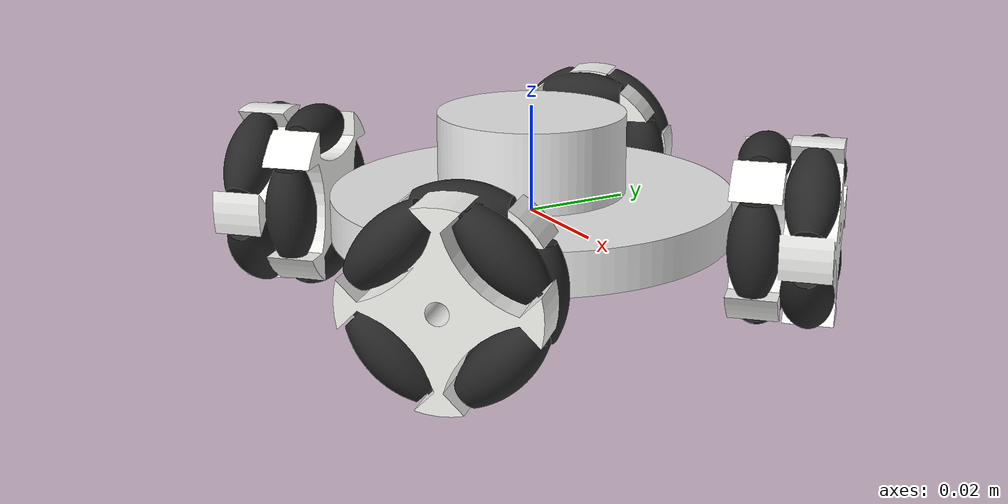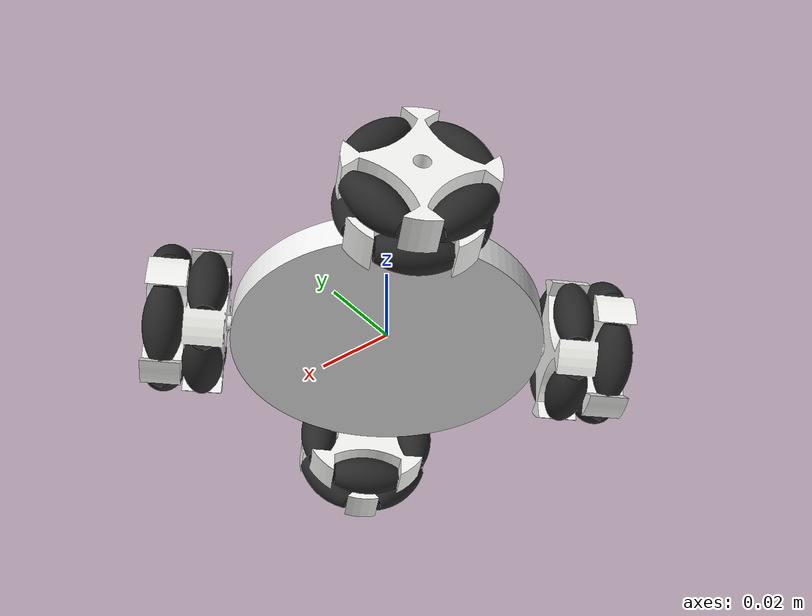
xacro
<?xml version="1.0"?>
<robot name="omni_robot" xmlns:xacro="http://ros.org/wiki/xacro">

  <xacro:property name="M_PI" value="3.14159274" />

  <xacro:arg name="use_ros2_control" default="true" />
  <xacro:arg name="sim_mode" default="false" />

  <xacro:include filename="$(find armmy_omnibot)/urdf/base/base.urdf.xacro" />
  <xacro:include filename="$(find armmy_omnibot)/urdf/omni_wheel/gz_omni_wheel.urdf.xacro" />
  <xacro:include filename="$(find armmy_omnibot)/urdf/lidar/lidar_gz.urdf.xacro" />
  <xacro:include filename="$(find armmy_omnibot)/urdf/imu/imu_gz.urdf.xacro" />
  <xacro:include filename="$(find armmy_omnibot)/urdf/color.xacro" />

  <!-- =============== Link & Joint =============== -->
  <!-- Base -->
  <link name="base_footprint" />
  <xacro:base_v0 parent="base_footprint">
    <origin xyz="0 0 0" rpy="0 0 ${M_PI / 4}" />
  </xacro:base_v0>

  <!-- Wheel -->
  <!-- 1st wheel -->
  <xacro:wheel_v0 prefix="first" parent="base_link">
    <origin xyz="-0.0 0.038375 -0.0" rpy="0 0 0" />
    <axis xyz="0.0 1.0 0.0" />
  </xacro:wheel_v0>

  <!-- 2nd wheel -->
  <xacro:wheel_v0 prefix="second" parent="base_link">
    <origin xyz="-0.038375 0.0 -0.0" rpy="0 0 ${M_PI/2}" />
    <axis xyz="0.0 1.0 0.0" />
  </xacro:wheel_v0>

  <!-- 3rd wheel -->
  <xacro:wheel_v0 prefix="third" parent="base_link">
    <origin xyz="-0.0 -0.038375 -0.0" rpy="0 0 ${M_PI}" />
    <axis xyz="0.0 1.0 0.0" />
  </xacro:wheel_v0>

  <!-- 4th wheel -->
  <xacro:wheel_v0 prefix="fourth" parent="base_link">
    <origin xyz="0.038375 0.0 -0.0" rpy="0 0 ${3*M_PI/2}" />
    <axis xyz="0.0 1.0 0.0" />
  </xacro:wheel_v0>

  <!-- lidar sensor -->
  <xacro:lidar_v0 prefix="top" parent="base_link">
    <origin xyz="0 0 0.05000000000000001" />
  </xacro:lidar_v0>
  <xacro:lidar_gazebo_v0 prefix="top" min_rad="-3.14" max_rad="3.14" min_range="0.02" max_range="10" />

  <!-- imu sensor -->
  <xacro:imu_v0 prefix="top" parent="base_link">
    <origin xyz="0 0 0.05000000000000001" />
  </xacro:imu_v0>
  <xacro:imu_gazebo_v0 prefix="top" />

  <!-- ===============  Transmission =============== -->
  <xacro:wheel_trans_v0 prefix="first" />
  <xacro:wheel_trans_v0 prefix="second" />
  <xacro:wheel_trans_v0 prefix="third" />
  <xacro:wheel_trans_v0 prefix="fourth" />

  <!-- Base -->
  <xacro:base_gazebo_v0 />

  <!-- Wheel -->
  <xacro:wheel_gazebo_v0 prefix="first" />
  <xacro:wheel_gazebo_v0 prefix="second" />
  <xacro:wheel_gazebo_v0 prefix="third" />
  <xacro:wheel_gazebo_v0 prefix="fourth" />

  <ros2_control name="GazeboSystem" type="system">
    <hardware>
      <plugin>gz_ros2_control/GazeboSimSystem</plugin>
    </hardware>
    <joint name="first_wheel_joint">
      <command_interface name="velocity">
        <param name="min">-3.14</param>
        <param name="max">3.14</param>
      </command_interface>
      <state_interface name="velocity" />
      <state_interface name="position" />
    </joint>

    <joint name="second_wheel_joint">
      <command_interface name="velocity">
        <param name="min">-3.14</param>
        <param name="max">3.14</param>
      </command_interface>
      <state_interface name="velocity" />
      <state_interface name="position" />
    </joint>

    <joint name="third_wheel_joint">
      <command_interface name="velocity">
        <param name="min">-3.14</param>
        <param name="max">3.14</param>
      </command_interface>
      <state_interface name="velocity" />
      <state_interface name="position" />
    </joint>

    <joint name="fourth_wheel_joint">
      <command_interface name="velocity">
        <param name="min">-3.14</param>
        <param name="max">3.14</param>
      </command_interface>
      <state_interface name="velocity" />
      <state_interface name="position" />
    </joint>
  </ros2_control>

  <gazebo>
    <plugin name="gz_ros2_control::GazeboSimROS2ControlPlugin"
      filename="libgz_ros2_control-system.so">
      <parameters>$(find armmy_omnibot)/config/ros2_controller/my_controllers.yaml</parameters>
    </plugin>
    <plugin filename="libignition-gazebo6-pose-publisher-system.so"
      name="ignition::gazebo::systems::PosePublisher">
      <publish_link_pose>false</publish_link_pose>
      <publish_nested_model_pose>true</publish_nested_model_pose>
      <static_update_frequency>10</static_update_frequency>
   </plugin>
  </gazebo>
</robot>

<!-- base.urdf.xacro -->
<robot xmlns:xacro="http://ros.org/wiki/xacro">

  <xacro:include filename="$(find armmy_omnibot)/urdf/base/base.gazebo.xacro" />
  <xacro:include filename="$(find armmy_omnibot)/urdf/inertial_macros.xacro" />

  <xacro:property name="bass_thickness" value="0.008" />
  <xacro:property name="base_radian" value="0.040" />
  <xacro:property name="base_mass" value="0.2" />

  <xacro:macro name="base_v0" params="parent *joint_origin">
    <joint name="base_link_joint" type="fixed">
      <xacro:insert_block name="joint_origin" />
      <parent link="${parent}" />
      <child link="base_link" />
    </joint>

    <link name="base_link">
      <visual>
        <geometry>
          <mesh filename="package://armmy_omnibot/meshes/base_link.stl"
            scale="0.001 0.001 0.001" />
        </geometry>
        <material name="white" />
      </visual>
      <collision>
        <geometry>
          <mesh filename="package://armmy_omnibot/meshes/base_link.stl"
            scale="0.001 0.001 0.001" />
        </geometry>
      </collision>

      <xacro:inertial_cylinder mass="${base_mass}" length="${bass_thickness}"
        radius="${base_radian}">
        <origin xyz="0 0 0" rpy="0 0 0" />
      </xacro:inertial_cylinder>

    </link>
  </xacro:macro>

</robot>

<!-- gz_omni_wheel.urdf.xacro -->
<robot xmlns:xacro="http://ros.org/wiki/xacro">
    <xacro:include filename="$(find armmy_omnibot)/urdf/inertial_macros.xacro" />
    <xacro:include filename="$(find armmy_omnibot)/urdf/omni_wheel/omni_wheel.gazebo.xacro" />
    <xacro:include filename="$(find armmy_omnibot)/urdf/omni_wheel/omni_wheel.transmission.xacro" />
    <xacro:include filename="$(find armmy_omnibot)/urdf/roller/gz_roller.urdf.xacro" />

    <xacro:property name="wheel_thickness" value="0.0185" />
    <xacro:property name="wheel_radian" value="0.0175" />
    <xacro:property name="wheel_mass" value="0.05" />

    <xacro:macro name="wheel_v0" params="prefix parent *joint_origin *joint_axis">
        <joint name="${prefix}_wheel_joint" type="continuous">
            <xacro:insert_block name="joint_origin" />
            <parent link="${parent}" />
            <child link="${prefix}_wheel_link" />
            <limit effort="100" velocity="100" />
            <xacro:insert_block name="joint_axis" />
        </joint>

        <link name="${prefix}_wheel_link">
            <visual>
                <geometry>
                    <mesh filename="package://armmy_omnibot/meshes/omni_wheel/wheel_assembly.dae"
                        scale="1 1 1" />
                </geometry>
            </visual>

            <xacro:inertial_cylinder mass="${wheel_mass}" length="${wheel_thickness}"
                radius="${wheel_radian}">
                <origin xyz="0 ${wheel_thickness/2} 0" rpy="1.570796327 0 0" />
            </xacro:inertial_cylinder>
        </link>

        <xacro:roller prefix="${prefix}" num="1">
            <origin xyz="0.0055 0.0046 0.0" rpy="0.0 0.0 0.0" />
            <axis xyz="0.0 0.0 1.0" />
        </xacro:roller>
        <xacro:roller prefix="${prefix}" num="2">
            <origin xyz="0.0 0.0046 0.0055" rpy="0.0 0.0 0.0" />
            <axis xyz="-1.0 0.0 0.0" />
        </xacro:roller>
        <xacro:roller prefix="${prefix}" num="3">
            <origin xyz="-0.0055 0.0046 0.0" rpy="0.0 0.0 0.0" />
            <axis xyz="-0.0 0.0 -1.0" />
        </xacro:roller>
        <xacro:roller prefix="${prefix}" num="4">
            <origin xyz="-0.0 0.0046 -0.0055" rpy="0.0 0.0 0.0" />
            <axis xyz="1.0 0.0 -0.0" />
        </xacro:roller>
        <xacro:roller prefix="${prefix}" num="5">
            <origin xyz="0.0039 0.0139 0.0039" rpy="0.0 0.0 0.0" />
            <axis xyz="-0.707107 0.0 0.707107" />
        </xacro:roller>
        <xacro:roller prefix="${prefix}" num="6">
            <origin xyz="-0.0039 0.0139 0.0039" rpy="0.0 0.0 0.0" />
            <axis xyz="-0.707107 0.0 -0.707107" />
        </xacro:roller>
        <xacro:roller prefix="${prefix}" num="7">
            <origin xyz="-0.0039 0.0139 -0.0039" rpy="0.0 0.0 0.0" />
            <axis xyz="0.707107 0.0 -0.707107" />
        </xacro:roller>
        <xacro:roller prefix="${prefix}" num="8">
            <origin xyz="0.0039 0.0139 -0.0039" rpy="0.0 0.0 0.0" />
            <axis xyz="0.707107 0.0 0.707107" />
        </xacro:roller>
    </xacro:macro>
</robot>

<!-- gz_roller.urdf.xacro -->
<robot xmlns:xacro="http://ros.org/wiki/xacro">
    <xacro:include filename="$(find armmy_omnibot)/urdf/inertial_macros.xacro" />
    <xacro:property name="roller_mass" value="0.02" />
    <xacro:property name="roller_radius" value="0.012" />
    <xacro:macro name="roller" params="prefix num *joint_origin *joint_axis">

        <link name="roller_${prefix}_${num}_link">
            <xacro:inertial_sphere mass="${roller_mass}" radius="${roller_radius}">
                <origin xyz="0 0 0" rpy="0 0 0" />
            </xacro:inertial_sphere>
            <collision>
                <origin xyz="0 0 0" rpy="0 0 0" />
                <geometry>
                    <sphere radius="${roller_radius}" />
                </geometry>
            </collision>
            <surface>
                <friction>
                    <ode>
                        <mu>1.0</mu>
                        <mu2>1.0</mu2>
                    </ode>
                </friction>
            </surface>
        </link>
        <joint name="roller_${prefix}_${num}_joint" type="continuous">
            <xacro:insert_block name="joint_origin" />
            <parent link="${prefix}_wheel_link" />
            <child link="roller_${prefix}_${num}_link" />
            <xacro:insert_block name="joint_axis" />
        </joint>
    </xacro:macro>
</robot>

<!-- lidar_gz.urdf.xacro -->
<robot xmlns:xacro="http://ros.org/wiki/xacro">
  <xacro:include filename="$(find armmy_omnibot)/urdf/lidar/lidar.gz.xacro" />

  <xacro:macro name="lidar_v0" params="prefix parent *joint_origin">
    <joint name="${prefix}_lidar_joint" type="fixed">
      <xacro:insert_block name="joint_origin" />
      <parent link="${parent}" />
      <child link="${prefix}_lidar_link" />
    </joint>
    <link name="${prefix}_lidar_link">
    </link>
  </xacro:macro>
</robot>

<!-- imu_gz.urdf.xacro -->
<robot xmlns:xacro="http://ros.org/wiki/xacro">
  <xacro:include filename="$(find armmy_omnibot)/urdf/imu/imu.gz.xacro" />
  <xacro:macro name="imu_v0" params="prefix parent *joint_origin">
    <joint name="${prefix}_imu_joint" type="fixed">
      <xacro:insert_block name="joint_origin" />
      <parent link="${parent}" />
      <child link="${prefix}_imu_link" />
    </joint>
    <link name="${prefix}_imu_link">
    </link>
  </xacro:macro>
</robot>
